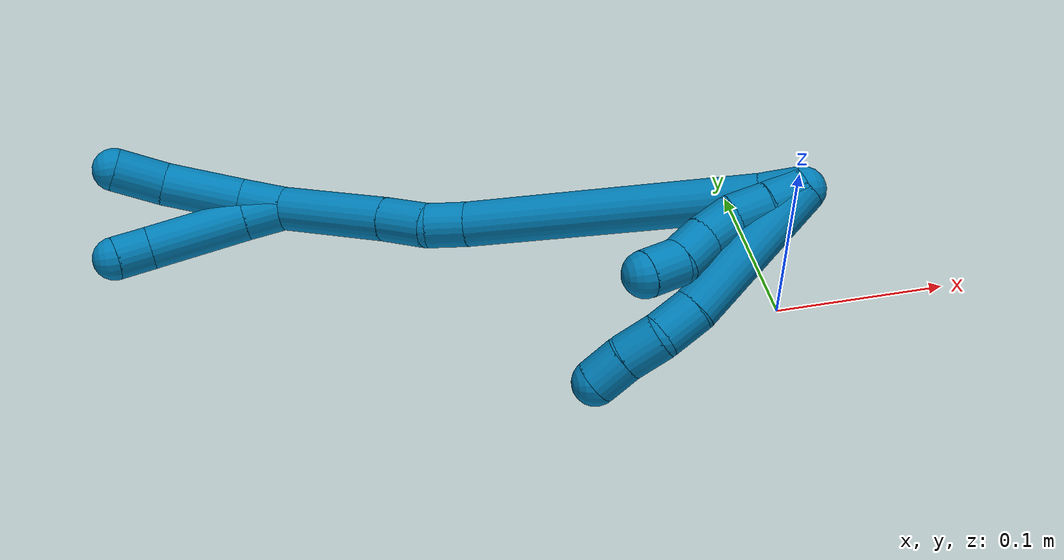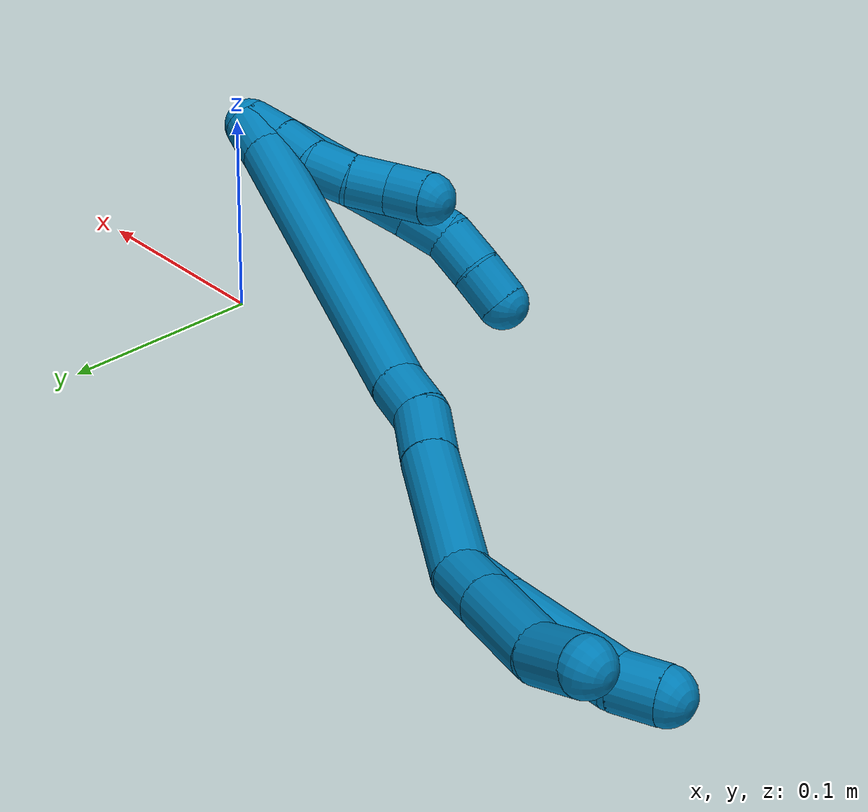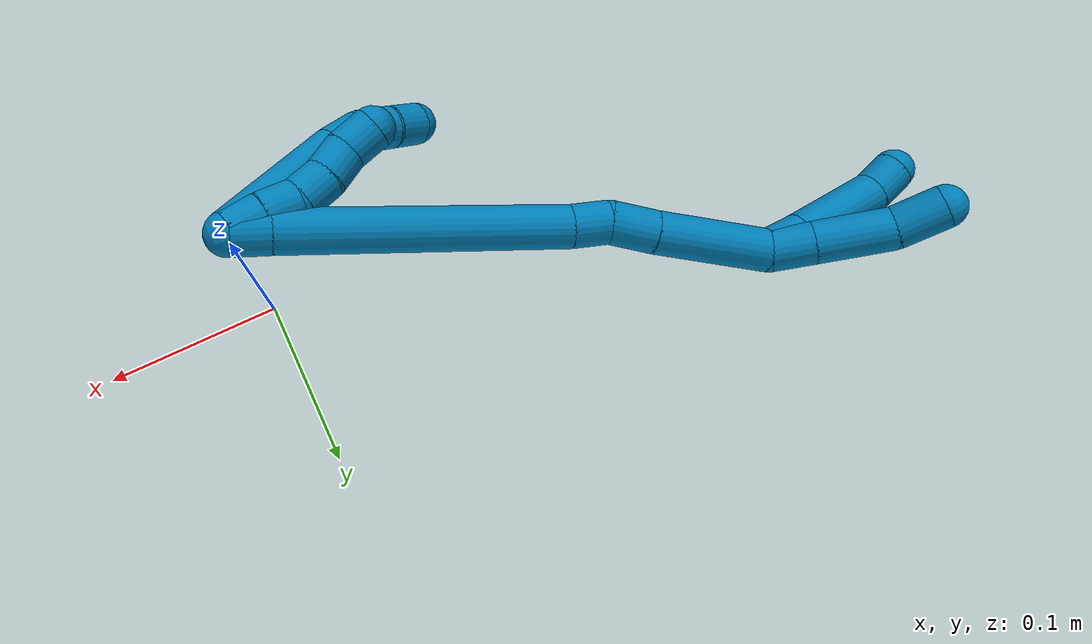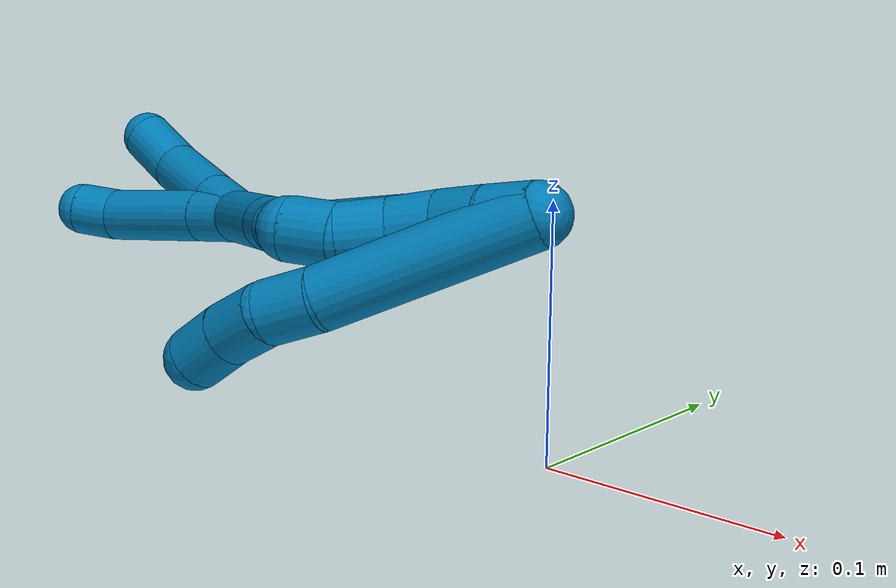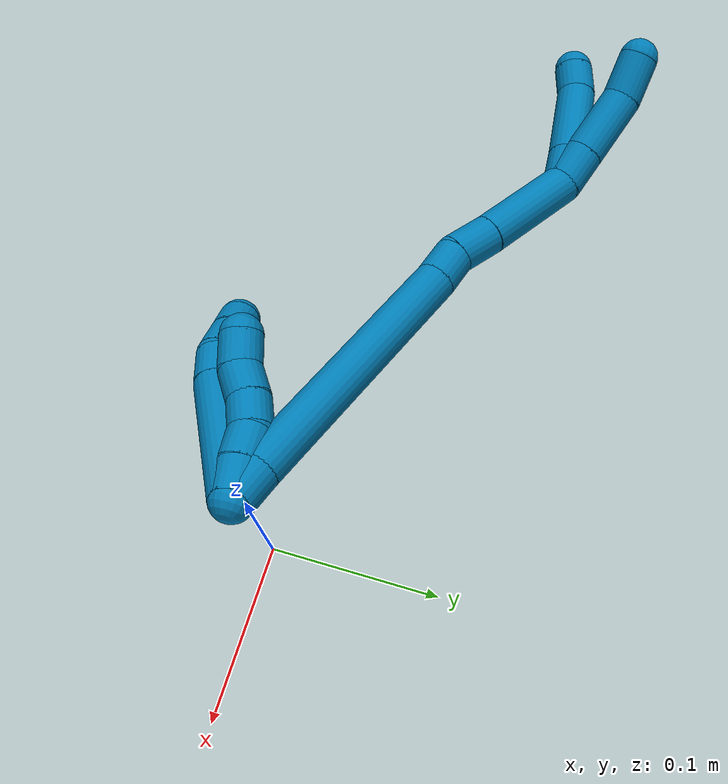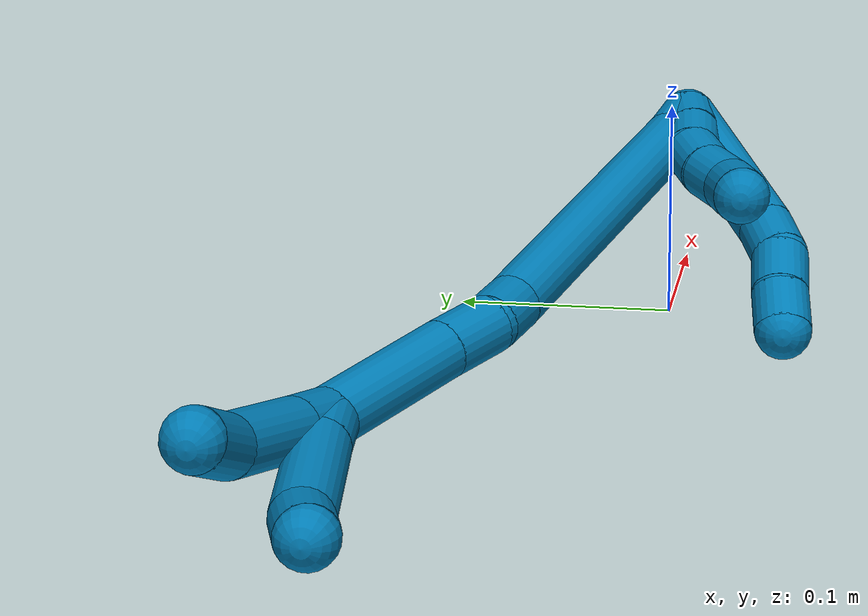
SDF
<sdf version="1.7">
 <world name="default">
  <model name="9">
   <static>0</static>
   <link name="9">
    <collision name="collision-cylinder-e_1_2_8">
     <pose>-0.013592 -0.022448 0.034187 0.581017 -0.32084 -0.096677</pose>
     <geometry><cylinder><radius>0.0125</radius><length>0.086196</length></cylinder></geometry>
     <surface>
      <friction><ode><mu>1.16</mu><mu2>1.16</mu2><slip1>0</slip1><slip2>0</slip2></ode></friction>
      <contact><ode><kp>1e+06</kp><kd>1</kd><max_vel>0</max_vel><min_depth>0.001</min_depth></ode></contact>
     </surface>
    </collision>
    <visual name="visual-cylinder-e_1_2_8">
     <pose>-0.013592 -0.022448 0.034187 0.581017 -0.32084 -0.096677</pose>
     <geometry><cylinder><radius>0.0125</radius><length>0.086196</length></cylinder></geometry>
     <material><ambient>0 0.490196 0.709804 1</ambient></material>
    </visual>
    <collision name="collision-cylinder-e_2_8_9">
     <pose>-0.030371 -0.049032 0.078044 0.404194 -0.294346 -0.06073</pose>
     <geometry><cylinder><radius>0.0125</radius><length>0.021979</length></cylinder></geometry>
     <surface>
      <friction><ode><mu>1.16</mu><mu2>1.16</mu2><slip1>0</slip1><slip2>0</slip2></ode></friction>
      <contact><ode><kp>1e+06</kp><kd>1</kd><max_vel>0</max_vel><min_depth>0.001</min_depth></ode></contact>
     </surface>
    </collision>
    <visual name="visual-cylinder-e_2_8_9">
     <pose>-0.030371 -0.049032 0.078044 0.404194 -0.294346 -0.06073</pose>
     <geometry><cylinder><radius>0.0125</radius><length>0.021979</length></cylinder></geometry>
     <material><ambient>0 0.490196 0.709804 1</ambient></material>
    </visual>
    <collision name="collision-cylinder-e_3_9_10">
     <pose>-0.039185 -0.054658 0.0969 0.16071 -0.543641 -0.044882</pose>
     <geometry><cylinder><radius>0.0125</radius><length>0.02175</length></cylinder></geometry>
     <surface>
      <friction><ode><mu>1.16</mu><mu2>1.16</mu2><slip1>0</slip1><slip2>0</slip2></ode></friction>
      <contact><ode><kp>1e+06</kp><kd>1</kd><max_vel>0</max_vel><min_depth>0.001</min_depth></ode></contact>
     </surface>
    </collision>
    <visual name="visual-cylinder-e_3_9_10">
     <pose>-0.039185 -0.054658 0.0969 0.16071 -0.543641 -0.044882</pose>
     <geometry><cylinder><radius>0.0125</radius><length>0.02175</length></cylinder></geometry>
     <material><ambient>0 0.490196 0.709804 1</ambient></material>
    </visual>
    <collision name="collision-cylinder-e_4_10_6">
     <pose>-0.050761 -0.058329 0.113871 0.27332 -0.634672 -0.09027</pose>
     <geometry><cylinder><radius>0.0125</radius><length>0.020076</length></cylinder></geometry>
     <surface>
      <friction><ode><mu>1.16</mu><mu2>1.16</mu2><slip1>0</slip1><slip2>0</slip2></ode></friction>
      <contact><ode><kp>1e+06</kp><kd>1</kd><max_vel>0</max_vel><min_depth>0.001</min_depth></ode></contact>
     </surface>
    </collision>
    <visual name="visual-cylinder-e_4_10_6">
     <pose>-0.050761 -0.058329 0.113871 0.27332 -0.634672 -0.09027</pose>
     <geometry><cylinder><radius>0.0125</radius><length>0.020076</length></cylinder></geometry>
     <material><ambient>0 0.490196 0.709804 1</ambient></material>
    </visual>
    <collision name="collision-cylinder-e_1_2_11">
     <pose>-0.001726 -0.001885 0.009668 0.192575 -0.173514 -0.016801</pose>
     <geometry><cylinder><radius>0.0125</radius><length>0.02</length></cylinder></geometry>
     <surface>
      <friction><ode><mu>1.16</mu><mu2>1.16</mu2><slip1>0</slip1><slip2>0</slip2></ode></friction>
      <contact><ode><kp>1e+06</kp><kd>1</kd><max_vel>0</max_vel><min_depth>0.001</min_depth></ode></contact>
     </surface>
    </collision>
    <visual name="visual-cylinder-e_1_2_11">
     <pose>-0.001726 -0.001885 0.009668 0.192575 -0.173514 -0.016801</pose>
     <geometry><cylinder><radius>0.0125</radius><length>0.02</length></cylinder></geometry>
     <material><ambient>0 0.490196 0.709804 1</ambient></material>
    </visual>
    <collision name="collision-cylinder-e_2_11_12">
     <pose>-0.005703 -0.004698 0.029035 0.095348 -0.226993 -0.010876</pose>
     <geometry><cylinder><radius>0.0125</radius><length>0.02</length></cylinder></geometry>
     <surface>
      <friction><ode><mu>1.16</mu><mu2>1.16</mu2><slip1>0</slip1><slip2>0</slip2></ode></friction>
      <contact><ode><kp>1e+06</kp><kd>1</kd><max_vel>0</max_vel><min_depth>0.001</min_depth></ode></contact>
     </surface>
    </collision>
    <visual name="visual-cylinder-e_2_11_12">
     <pose>-0.005703 -0.004698 0.029035 0.095348 -0.226993 -0.010876</pose>
     <geometry><cylinder><radius>0.0125</radius><length>0.02</length></cylinder></geometry>
     <material><ambient>0 0.490196 0.709804 1</ambient></material>
    </visual>
    <collision name="collision-cylinder-e_3_12_13">
     <pose>-0.009408 -0.00973 0.047736 0.427833 -0.145951 -0.03176</pose>
     <geometry><cylinder><radius>0.0125</radius><length>0.02</length></cylinder></geometry>
     <surface>
      <friction><ode><mu>1.16</mu><mu2>1.16</mu2><slip1>0</slip1><slip2>0</slip2></ode></friction>
      <contact><ode><kp>1e+06</kp><kd>1</kd><max_vel>0</max_vel><min_depth>0.001</min_depth></ode></contact>
     </surface>
    </collision>
    <visual name="visual-cylinder-e_3_12_13">
     <pose>-0.009408 -0.00973 0.047736 0.427833 -0.145951 -0.03176</pose>
     <geometry><cylinder><radius>0.0125</radius><length>0.02</length></cylinder></geometry>
     <material><ambient>0 0.490196 0.709804 1</ambient></material>
    </visual>
    <collision name="collision-cylinder-e_4_13_14">
     <pose>-0.011157 -0.019395 0.065045 0.589788 -0.029478 -0.008954</pose>
     <geometry><cylinder><radius>0.0125</radius><length>0.02</length></cylinder></geometry>
     <surface>
      <friction><ode><mu>1.16</mu><mu2>1.16</mu2><slip1>0</slip1><slip2>0</slip2></ode></friction>
      <contact><ode><kp>1e+06</kp><kd>1</kd><max_vel>0</max_vel><min_depth>0.001</min_depth></ode></contact>
     </surface>
    </collision>
    <visual name="visual-cylinder-e_4_13_14">
     <pose>-0.011157 -0.019395 0.065045 0.589788 -0.029478 -0.008954</pose>
     <geometry><cylinder><radius>0.0125</radius><length>0.02</length></cylinder></geometry>
     <material><ambient>0 0.490196 0.709804 1</ambient></material>
    </visual>
    <collision name="collision-cylinder-e_5_14_5">
     <pose>-0.010819 -0.027508 0.082999 0.258784 0.063391 0.008251</pose>
     <geometry><cylinder><radius>0.0125</radius><length>0.02</length></cylinder></geometry>
     <surface>
      <friction><ode><mu>1.16</mu><mu2>1.16</mu2><slip1>0</slip1><slip2>0</slip2></ode></friction>
      <contact><ode><kp>1e+06</kp><kd>1</kd><max_vel>0</max_vel><min_depth>0.001</min_depth></ode></contact>
     </surface>
    </collision>
    <visual name="visual-cylinder-e_5_14_5">
     <pose>-0.010819 -0.027508 0.082999 0.258784 0.063391 0.008251</pose>
     <geometry><cylinder><radius>0.0125</radius><length>0.02</length></cylinder></geometry>
     <material><ambient>0 0.490196 0.709804 1</ambient></material>
    </visual>
    <collision name="collision-cylinder-e_1_2_15">
     <pose>-0.003912 0.002547 0.009767 -0.255118 -0.369788 0.047966</pose>
     <geometry><cylinder><radius>0.0125</radius><length>0.02165</length></cylinder></geometry>
     <surface>
      <friction><ode><mu>1.16</mu><mu2>1.16</mu2><slip1>0</slip1><slip2>0</slip2></ode></friction>
      <contact><ode><kp>1e+06</kp><kd>1</kd><max_vel>0</max_vel><min_depth>0.001</min_depth></ode></contact>
     </surface>
    </collision>
    <visual name="visual-cylinder-e_1_2_15">
     <pose>-0.003912 0.002547 0.009767 -0.255118 -0.369788 0.047966</pose>
     <geometry><cylinder><radius>0.0125</radius><length>0.02165</length></cylinder></geometry>
     <material><ambient>0 0.490196 0.709804 1</ambient></material>
    </visual>
    <collision name="collision-cylinder-e_2_15_16">
     <pose>-0.034162 0.029066 0.092147 -0.318864 -0.331701 0.053818</pose>
     <geometry><cylinder><radius>0.0125</radius><length>0.161753</length></cylinder></geometry>
     <surface>
      <friction><ode><mu>1.16</mu><mu2>1.16</mu2><slip1>0</slip1><slip2>0</slip2></ode></friction>
      <contact><ode><kp>1e+06</kp><kd>1</kd><max_vel>0</max_vel><min_depth>0.001</min_depth></ode></contact>
     </surface>
    </collision>
    <visual name="visual-cylinder-e_2_15_16">
     <pose>-0.034162 0.029066 0.092147 -0.318864 -0.331701 0.053818</pose>
     <geometry><cylinder><radius>0.0125</radius><length>0.161753</length></cylinder></geometry>
     <material><ambient>0 0.490196 0.709804 1</ambient></material>
    </visual>
    <collision name="collision-cylinder-e_3_16_17">
     <pose>-0.062811 0.056158 0.175295 -0.287936 -0.207337 0.030164</pose>
     <geometry><cylinder><radius>0.0125</radius><length>0.022455</length></cylinder></geometry>
     <surface>
      <friction><ode><mu>1.16</mu><mu2>1.16</mu2><slip1>0</slip1><slip2>0</slip2></ode></friction>
      <contact><ode><kp>1e+06</kp><kd>1</kd><max_vel>0</max_vel><min_depth>0.001</min_depth></ode></contact>
     </surface>
    </collision>
    <visual name="visual-cylinder-e_3_16_17">
     <pose>-0.062811 0.056158 0.175295 -0.287936 -0.207337 0.030164</pose>
     <geometry><cylinder><radius>0.0125</radius><length>0.022455</length></cylinder></geometry>
     <material><ambient>0 0.490196 0.709804 1</ambient></material>
    </visual>
    <collision name="collision-cylinder-e_4_17_18">
     <pose>-0.069467 0.066758 0.196357 -0.617774 -0.324492 0.104369</pose>
     <geometry><cylinder><radius>0.0125</radius><length>0.027251</length></cylinder></geometry>
     <surface>
      <friction><ode><mu>1.16</mu><mu2>1.16</mu2><slip1>0</slip1><slip2>0</slip2></ode></friction>
      <contact><ode><kp>1e+06</kp><kd>1</kd><max_vel>0</max_vel><min_depth>0.001</min_depth></ode></contact>
     </surface>
    </collision>
    <visual name="visual-cylinder-e_4_17_18">
     <pose>-0.069467 0.066758 0.196357 -0.617774 -0.324492 0.104369</pose>
     <geometry><cylinder><radius>0.0125</radius><length>0.027251</length></cylinder></geometry>
     <material><ambient>0 0.490196 0.709804 1</ambient></material>
    </visual>
    <collision name="collision-cylinder-e_5_18_1">
     <pose>-0.084056 0.090997 0.233954 -0.554347 -0.311321 0.089233</pose>
     <geometry><cylinder><radius>0.0125</radius><length>0.066891</length></cylinder></geometry>
     <surface>
      <friction><ode><mu>1.16</mu><mu2>1.16</mu2><slip1>0</slip1><slip2>0</slip2></ode></friction>
      <contact><ode><kp>1e+06</kp><kd>1</kd><max_vel>0</max_vel><min_depth>0.001</min_depth></ode></contact>
     </surface>
    </collision>
    <visual name="visual-cylinder-e_5_18_1">
     <pose>-0.084056 0.090997 0.233954 -0.554347 -0.311321 0.089233</pose>
     <geometry><cylinder><radius>0.0125</radius><length>0.066891</length></cylinder></geometry>
     <material><ambient>0 0.490196 0.709804 1</ambient></material>
    </visual>
    <collision name="collision-cylinder-e_1_1_19">
     <pose>-0.093788 0.112518 0.272683 -0.387749 0.040646 -0.007982</pose>
     <geometry><cylinder><radius>0.0125</radius><length>0.025209</length></cylinder></geometry>
     <surface>
      <friction><ode><mu>1.16</mu><mu2>1.16</mu2><slip1>0</slip1><slip2>0</slip2></ode></friction>
      <contact><ode><kp>1e+06</kp><kd>1</kd><max_vel>0</max_vel><min_depth>0.001</min_depth></ode></contact>
     </surface>
    </collision>
    <visual name="visual-cylinder-e_1_1_19">
     <pose>-0.093788 0.112518 0.272683 -0.387749 0.040646 -0.007982</pose>
     <geometry><cylinder><radius>0.0125</radius><length>0.025209</length></cylinder></geometry>
     <material><ambient>0 0.490196 0.709804 1</ambient></material>
    </visual>
    <collision name="collision-cylinder-e_2_19_20">
     <pose>-0.091973 0.125978 0.30535 -0.392517 0.057242 -0.011384</pose>
     <geometry><cylinder><radius>0.0125</radius><length>0.045549</length></cylinder></geometry>
     <surface>
      <friction><ode><mu>1.16</mu><mu2>1.16</mu2><slip1>0</slip1><slip2>0</slip2></ode></friction>
      <contact><ode><kp>1e+06</kp><kd>1</kd><max_vel>0</max_vel><min_depth>0.001</min_depth></ode></contact>
     </surface>
    </collision>
    <visual name="visual-cylinder-e_2_19_20">
     <pose>-0.091973 0.125978 0.30535 -0.392517 0.057242 -0.011384</pose>
     <geometry><cylinder><radius>0.0125</radius><length>0.045549</length></cylinder></geometry>
     <material><ambient>0 0.490196 0.709804 1</ambient></material>
    </visual>
    <collision name="collision-cylinder-e_3_20_4">
     <pose>-0.08579 0.138417 0.339623 -0.274929 0.340308 -0.047528</pose>
     <geometry><cylinder><radius>0.0125</radius><length>0.029242</length></cylinder></geometry>
     <surface>
      <friction><ode><mu>1.16</mu><mu2>1.16</mu2><slip1>0</slip1><slip2>0</slip2></ode></friction>
      <contact><ode><kp>1e+06</kp><kd>1</kd><max_vel>0</max_vel><min_depth>0.001</min_depth></ode></contact>
     </surface>
    </collision>
    <visual name="visual-cylinder-e_3_20_4">
     <pose>-0.08579 0.138417 0.339623 -0.274929 0.340308 -0.047528</pose>
     <geometry><cylinder><radius>0.0125</radius><length>0.029242</length></cylinder></geometry>
     <material><ambient>0 0.490196 0.709804 1</ambient></material>
    </visual>
    <collision name="collision-cylinder-e_1_1_21">
     <pose>-0.096001 0.107105 0.272461 0.056863 -0.147327 -0.004197</pose>
     <geometry><cylinder><radius>0.0125</radius><length>0.023163</length></cylinder></geometry>
     <surface>
      <friction><ode><mu>1.16</mu><mu2>1.16</mu2><slip1>0</slip1><slip2>0</slip2></ode></friction>
      <contact><ode><kp>1e+06</kp><kd>1</kd><max_vel>0</max_vel><min_depth>0.001</min_depth></ode></contact>
     </surface>
    </collision>
    <visual name="visual-cylinder-e_1_1_21">
     <pose>-0.096001 0.107105 0.272461 0.056863 -0.147327 -0.004197</pose>
     <geometry><cylinder><radius>0.0125</radius><length>0.023163</length></cylinder></geometry>
     <material><ambient>0 0.490196 0.709804 1</ambient></material>
    </visual>
    <collision name="collision-cylinder-e_2_21_22">
     <pose>-0.101491 0.103801 0.311687 0.095216 -0.134946 -0.006439</pose>
     <geometry><cylinder><radius>0.0125</radius><length>0.056341</length></cylinder></geometry>
     <surface>
      <friction><ode><mu>1.16</mu><mu2>1.16</mu2><slip1>0</slip1><slip2>0</slip2></ode></friction>
      <contact><ode><kp>1e+06</kp><kd>1</kd><max_vel>0</max_vel><min_depth>0.001</min_depth></ode></contact>
     </surface>
    </collision>
    <visual name="visual-cylinder-e_2_21_22">
     <pose>-0.101491 0.103801 0.311687 0.095216 -0.134946 -0.006439</pose>
     <geometry><cylinder><radius>0.0125</radius><length>0.056341</length></cylinder></geometry>
     <material><ambient>0 0.490196 0.709804 1</ambient></material>
    </visual>
    <collision name="collision-cylinder-e_3_22_3">
     <pose>-0.104341 0.098527 0.349338 0.259583 0.091825 0.011994</pose>
     <geometry><cylinder><radius>0.0125</radius><length>0.020496</length></cylinder></geometry>
     <surface>
      <friction><ode><mu>1.16</mu><mu2>1.16</mu2><slip1>0</slip1><slip2>0</slip2></ode></friction>
      <contact><ode><kp>1e+06</kp><kd>1</kd><max_vel>0</max_vel><min_depth>0.001</min_depth></ode></contact>
     </surface>
    </collision>
    <visual name="visual-cylinder-e_3_22_3">
     <pose>-0.104341 0.098527 0.349338 0.259583 0.091825 0.011994</pose>
     <geometry><cylinder><radius>0.0125</radius><length>0.020496</length></cylinder></geometry>
     <material><ambient>0 0.490196 0.709804 1</ambient></material>
    </visual>
    <collision name="collision-sphere-3">
     <pose>-0.103401 0.095908 0.359201 0 -0 0</pose>
     <geometry><sphere><radius>0.0125</radius></sphere></geometry>
     <surface>
      <friction><ode><mu>1.16</mu><mu2>1.16</mu2><slip1>0</slip1><slip2>0</slip2></ode></friction>
      <contact><ode><kp>1e+06</kp><kd>1</kd><max_vel>0</max_vel><min_depth>0.001</min_depth></ode></contact>
     </surface>
    </collision>
    <visual name="visual-sphere-3">
     <pose>-0.103401 0.095908 0.359201 0 -0 0</pose>
     <geometry><sphere><radius>0.0125</radius></sphere></geometry>
     <material><ambient>0 0.490196 0.709804 1</ambient></material>
    </visual>
    <collision name="collision-sphere-22">
     <pose>-0.105281 0.101147 0.339474 0 -0 0</pose>
     <geometry><sphere><radius>0.0125</radius></sphere></geometry>
     <surface>
      <friction><ode><mu>1.16</mu><mu2>1.16</mu2><slip1>0</slip1><slip2>0</slip2></ode></friction>
      <contact><ode><kp>1e+06</kp><kd>1</kd><max_vel>0</max_vel><min_depth>0.001</min_depth></ode></contact>
     </surface>
    </collision>
    <visual name="visual-sphere-22">
     <pose>-0.105281 0.101147 0.339474 0 -0 0</pose>
     <geometry><sphere><radius>0.0125</radius></sphere></geometry>
     <material><ambient>0 0.490196 0.709804 1</ambient></material>
    </visual>
    <collision name="collision-sphere-21">
     <pose>-0.097701 0.106454 0.283899 0 -0 0</pose>
     <geometry><sphere><radius>0.0125</radius></sphere></geometry>
     <surface>
      <friction><ode><mu>1.16</mu><mu2>1.16</mu2><slip1>0</slip1><slip2>0</slip2></ode></friction>
      <contact><ode><kp>1e+06</kp><kd>1</kd><max_vel>0</max_vel><min_depth>0.001</min_depth></ode></contact>
     </surface>
    </collision>
    <visual name="visual-sphere-21">
     <pose>-0.097701 0.106454 0.283899 0 -0 0</pose>
     <geometry><sphere><radius>0.0125</radius></sphere></geometry>
     <material><ambient>0 0.490196 0.709804 1</ambient></material>
    </visual>
    <collision name="collision-sphere-4">
     <pose>-0.08091 0.142158 0.352888 0 -0 0</pose>
     <geometry><sphere><radius>0.0125</radius></sphere></geometry>
     <surface>
      <friction><ode><mu>1.16</mu><mu2>1.16</mu2><slip1>0</slip1><slip2>0</slip2></ode></friction>
      <contact><ode><kp>1e+06</kp><kd>1</kd><max_vel>0</max_vel><min_depth>0.001</min_depth></ode></contact>
     </surface>
    </collision>
    <visual name="visual-sphere-4">
     <pose>-0.08091 0.142158 0.352888 0 -0 0</pose>
     <geometry><sphere><radius>0.0125</radius></sphere></geometry>
     <material><ambient>0 0.490196 0.709804 1</ambient></material>
    </visual>
    <collision name="collision-sphere-20">
     <pose>-0.09067 0.134675 0.326358 0 -0 0</pose>
     <geometry><sphere><radius>0.0125</radius></sphere></geometry>
     <surface>
      <friction><ode><mu>1.16</mu><mu2>1.16</mu2><slip1>0</slip1><slip2>0</slip2></ode></friction>
      <contact><ode><kp>1e+06</kp><kd>1</kd><max_vel>0</max_vel><min_depth>0.001</min_depth></ode></contact>
     </surface>
    </collision>
    <visual name="visual-sphere-20">
     <pose>-0.09067 0.134675 0.326358 0 -0 0</pose>
     <geometry><sphere><radius>0.0125</radius></sphere></geometry>
     <material><ambient>0 0.490196 0.709804 1</ambient></material>
    </visual>
    <collision name="collision-sphere-11">
     <pose>-0.003453 -0.00377 0.019336 0 -0 0</pose>
     <geometry><sphere><radius>0.0125</radius></sphere></geometry>
     <surface>
      <friction><ode><mu>1.16</mu><mu2>1.16</mu2><slip1>0</slip1><slip2>0</slip2></ode></friction>
      <contact><ode><kp>1e+06</kp><kd>1</kd><max_vel>0</max_vel><min_depth>0.001</min_depth></ode></contact>
     </surface>
    </collision>
    <visual name="visual-sphere-11">
     <pose>-0.003453 -0.00377 0.019336 0 -0 0</pose>
     <geometry><sphere><radius>0.0125</radius></sphere></geometry>
     <material><ambient>0 0.490196 0.709804 1</ambient></material>
    </visual>
    <collision name="collision-sphere-6">
     <pose>-0.056713 -0.060511 0.121654 0 -0 0</pose>
     <geometry><sphere><radius>0.0125</radius></sphere></geometry>
     <surface>
      <friction><ode><mu>1.16</mu><mu2>1.16</mu2><slip1>0</slip1><slip2>0</slip2></ode></friction>
      <contact><ode><kp>1e+06</kp><kd>1</kd><max_vel>0</max_vel><min_depth>0.001</min_depth></ode></contact>
     </surface>
    </collision>
    <visual name="visual-sphere-6">
     <pose>-0.056713 -0.060511 0.121654 0 -0 0</pose>
     <geometry><sphere><radius>0.0125</radius></sphere></geometry>
     <material><ambient>0 0.490196 0.709804 1</ambient></material>
    </visual>
    <collision name="collision-sphere-10">
     <pose>-0.04481 -0.056147 0.106088 0 -0 0</pose>
     <geometry><sphere><radius>0.0125</radius></sphere></geometry>
     <surface>
      <friction><ode><mu>1.16</mu><mu2>1.16</mu2><slip1>0</slip1><slip2>0</slip2></ode></friction>
      <contact><ode><kp>1e+06</kp><kd>1</kd><max_vel>0</max_vel><min_depth>0.001</min_depth></ode></contact>
     </surface>
    </collision>
    <visual name="visual-sphere-10">
     <pose>-0.04481 -0.056147 0.106088 0 -0 0</pose>
     <geometry><sphere><radius>0.0125</radius></sphere></geometry>
     <material><ambient>0 0.490196 0.709804 1</ambient></material>
    </visual>
    <collision name="collision-sphere-9">
     <pose>-0.033559 -0.053168 0.087713 0 -0 0</pose>
     <geometry><sphere><radius>0.0125</radius></sphere></geometry>
     <surface>
      <friction><ode><mu>1.16</mu><mu2>1.16</mu2><slip1>0</slip1><slip2>0</slip2></ode></friction>
      <contact><ode><kp>1e+06</kp><kd>1</kd><max_vel>0</max_vel><min_depth>0.001</min_depth></ode></contact>
     </surface>
    </collision>
    <visual name="visual-sphere-9">
     <pose>-0.033559 -0.053168 0.087713 0 -0 0</pose>
     <geometry><sphere><radius>0.0125</radius></sphere></geometry>
     <material><ambient>0 0.490196 0.709804 1</ambient></material>
    </visual>
    <collision name="collision-sphere-2">
     <geometry><sphere><radius>0.0125</radius></sphere></geometry>
     <surface>
      <friction><ode><mu>1.16</mu><mu2>1.16</mu2><slip1>0</slip1><slip2>0</slip2></ode></friction>
      <contact><ode><kp>1e+06</kp><kd>1</kd><max_vel>0</max_vel><min_depth>0.001</min_depth></ode></contact>
     </surface>
    </collision>
    <visual name="visual-sphere-2">
     <geometry><sphere><radius>0.0125</radius></sphere></geometry>
     <material><ambient>0 0.490196 0.709804 1</ambient></material>
    </visual>
    <collision name="collision-sphere-19">
     <pose>-0.093276 0.11728 0.284342 0 -0 0</pose>
     <geometry><sphere><radius>0.0125</radius></sphere></geometry>
     <surface>
      <friction><ode><mu>1.16</mu><mu2>1.16</mu2><slip1>0</slip1><slip2>0</slip2></ode></friction>
      <contact><ode><kp>1e+06</kp><kd>1</kd><max_vel>0</max_vel><min_depth>0.001</min_depth></ode></contact>
     </surface>
    </collision>
    <visual name="visual-sphere-19">
     <pose>-0.093276 0.11728 0.284342 0 -0 0</pose>
     <geometry><sphere><radius>0.0125</radius></sphere></geometry>
     <material><ambient>0 0.490196 0.709804 1</ambient></material>
    </visual>
    <collision name="collision-sphere-8">
     <pose>-0.027183 -0.044896 0.068375 0 -0 0</pose>
     <geometry><sphere><radius>0.0125</radius></sphere></geometry>
     <surface>
      <friction><ode><mu>1.16</mu><mu2>1.16</mu2><slip1>0</slip1><slip2>0</slip2></ode></friction>
      <contact><ode><kp>1e+06</kp><kd>1</kd><max_vel>0</max_vel><min_depth>0.001</min_depth></ode></contact>
     </surface>
    </collision>
    <visual name="visual-sphere-8">
     <pose>-0.027183 -0.044896 0.068375 0 -0 0</pose>
     <geometry><sphere><radius>0.0125</radius></sphere></geometry>
     <material><ambient>0 0.490196 0.709804 1</ambient></material>
    </visual>
    <collision name="collision-sphere-12">
     <pose>-0.007954 -0.005625 0.038734 0 -0 0</pose>
     <geometry><sphere><radius>0.0125</radius></sphere></geometry>
     <surface>
      <friction><ode><mu>1.16</mu><mu2>1.16</mu2><slip1>0</slip1><slip2>0</slip2></ode></friction>
      <contact><ode><kp>1e+06</kp><kd>1</kd><max_vel>0</max_vel><min_depth>0.001</min_depth></ode></contact>
     </surface>
    </collision>
    <visual name="visual-sphere-12">
     <pose>-0.007954 -0.005625 0.038734 0 -0 0</pose>
     <geometry><sphere><radius>0.0125</radius></sphere></geometry>
     <material><ambient>0 0.490196 0.709804 1</ambient></material>
    </visual>
    <collision name="collision-sphere-13">
     <pose>-0.010863 -0.013835 0.056738 0 -0 0</pose>
     <geometry><sphere><radius>0.0125</radius></sphere></geometry>
     <surface>
      <friction><ode><mu>1.16</mu><mu2>1.16</mu2><slip1>0</slip1><slip2>0</slip2></ode></friction>
      <contact><ode><kp>1e+06</kp><kd>1</kd><max_vel>0</max_vel><min_depth>0.001</min_depth></ode></contact>
     </surface>
    </collision>
    <visual name="visual-sphere-13">
     <pose>-0.010863 -0.013835 0.056738 0 -0 0</pose>
     <geometry><sphere><radius>0.0125</radius></sphere></geometry>
     <material><ambient>0 0.490196 0.709804 1</ambient></material>
    </visual>
    <collision name="collision-sphere-14">
     <pose>-0.011452 -0.024954 0.073352 0 -0 0</pose>
     <geometry><sphere><radius>0.0125</radius></sphere></geometry>
     <surface>
      <friction><ode><mu>1.16</mu><mu2>1.16</mu2><slip1>0</slip1><slip2>0</slip2></ode></friction>
      <contact><ode><kp>1e+06</kp><kd>1</kd><max_vel>0</max_vel><min_depth>0.001</min_depth></ode></contact>
     </surface>
    </collision>
    <visual name="visual-sphere-14">
     <pose>-0.011452 -0.024954 0.073352 0 -0 0</pose>
     <geometry><sphere><radius>0.0125</radius></sphere></geometry>
     <material><ambient>0 0.490196 0.709804 1</ambient></material>
    </visual>
    <collision name="collision-sphere-5">
     <pose>-0.010185 -0.030062 0.092647 0 -0 0</pose>
     <geometry><sphere><radius>0.0125</radius></sphere></geometry>
     <surface>
      <friction><ode><mu>1.16</mu><mu2>1.16</mu2><slip1>0</slip1><slip2>0</slip2></ode></friction>
      <contact><ode><kp>1e+06</kp><kd>1</kd><max_vel>0</max_vel><min_depth>0.001</min_depth></ode></contact>
     </surface>
    </collision>
    <visual name="visual-sphere-5">
     <pose>-0.010185 -0.030062 0.092647 0 -0 0</pose>
     <geometry><sphere><radius>0.0125</radius></sphere></geometry>
     <material><ambient>0 0.490196 0.709804 1</ambient></material>
    </visual>
    <collision name="collision-sphere-15">
     <pose>-0.007825 0.005094 0.019534 0 -0 0</pose>
     <geometry><sphere><radius>0.0125</radius></sphere></geometry>
     <surface>
      <friction><ode><mu>1.16</mu><mu2>1.16</mu2><slip1>0</slip1><slip2>0</slip2></ode></friction>
      <contact><ode><kp>1e+06</kp><kd>1</kd><max_vel>0</max_vel><min_depth>0.001</min_depth></ode></contact>
     </surface>
    </collision>
    <visual name="visual-sphere-15">
     <pose>-0.007825 0.005094 0.019534 0 -0 0</pose>
     <geometry><sphere><radius>0.0125</radius></sphere></geometry>
     <material><ambient>0 0.490196 0.709804 1</ambient></material>
    </visual>
    <collision name="collision-sphere-16">
     <pose>-0.0605 0.053038 0.16476 0 -0 0</pose>
     <geometry><sphere><radius>0.0125</radius></sphere></geometry>
     <surface>
      <friction><ode><mu>1.16</mu><mu2>1.16</mu2><slip1>0</slip1><slip2>0</slip2></ode></friction>
      <contact><ode><kp>1e+06</kp><kd>1</kd><max_vel>0</max_vel><min_depth>0.001</min_depth></ode></contact>
     </surface>
    </collision>
    <visual name="visual-sphere-16">
     <pose>-0.0605 0.053038 0.16476 0 -0 0</pose>
     <geometry><sphere><radius>0.0125</radius></sphere></geometry>
     <material><ambient>0 0.490196 0.709804 1</ambient></material>
    </visual>
    <collision name="collision-sphere-17">
     <pose>-0.065122 0.059278 0.18583 0 -0 0</pose>
     <geometry><sphere><radius>0.0125</radius></sphere></geometry>
     <surface>
      <friction><ode><mu>1.16</mu><mu2>1.16</mu2><slip1>0</slip1><slip2>0</slip2></ode></friction>
      <contact><ode><kp>1e+06</kp><kd>1</kd><max_vel>0</max_vel><min_depth>0.001</min_depth></ode></contact>
     </surface>
    </collision>
    <visual name="visual-sphere-17">
     <pose>-0.065122 0.059278 0.18583 0 -0 0</pose>
     <geometry><sphere><radius>0.0125</radius></sphere></geometry>
     <material><ambient>0 0.490196 0.709804 1</ambient></material>
    </visual>
    <collision name="collision-sphere-18">
     <pose>-0.073811 0.074238 0.206884 0 -0 0</pose>
     <geometry><sphere><radius>0.0125</radius></sphere></geometry>
     <surface>
      <friction><ode><mu>1.16</mu><mu2>1.16</mu2><slip1>0</slip1><slip2>0</slip2></ode></friction>
      <contact><ode><kp>1e+06</kp><kd>1</kd><max_vel>0</max_vel><min_depth>0.001</min_depth></ode></contact>
     </surface>
    </collision>
    <visual name="visual-sphere-18">
     <pose>-0.073811 0.074238 0.206884 0 -0 0</pose>
     <geometry><sphere><radius>0.0125</radius></sphere></geometry>
     <material><ambient>0 0.490196 0.709804 1</ambient></material>
    </visual>
    <collision name="collision-sphere-1">
     <pose>-0.094301 0.107757 0.261024 0 -0 0</pose>
     <geometry><sphere><radius>0.0125</radius></sphere></geometry>
     <surface>
      <friction><ode><mu>1.16</mu><mu2>1.16</mu2><slip1>0</slip1><slip2>0</slip2></ode></friction>
      <contact><ode><kp>1e+06</kp><kd>1</kd><max_vel>0</max_vel><min_depth>0.001</min_depth></ode></contact>
     </surface>
    </collision>
    <visual name="visual-sphere-1">
     <pose>-0.094301 0.107757 0.261024 0 -0 0</pose>
     <geometry><sphere><radius>0.0125</radius></sphere></geometry>
     <material><ambient>0 0.490196 0.709804 1</ambient></material>
    </visual>
    <inertial>
     <pose>-0.050888 0.040344 0.154059 0 -0 0</pose>
     <mass>0.75</mass>
     <inertia>
      <ixx>0.000474</ixx>
      <ixy>0</ixy>
      <ixz>0</ixz>
      <iyy>0.000484</iyy>
      <iyz>0</iyz>
      <izz>0.000108</izz>
     </inertia>
    </inertial>
   </link>
   <pose>-0.000569 -0.007597 0.096036 1.46381 -1.35256 -1.42096</pose>
  </model>
 </world>
</sdf>
